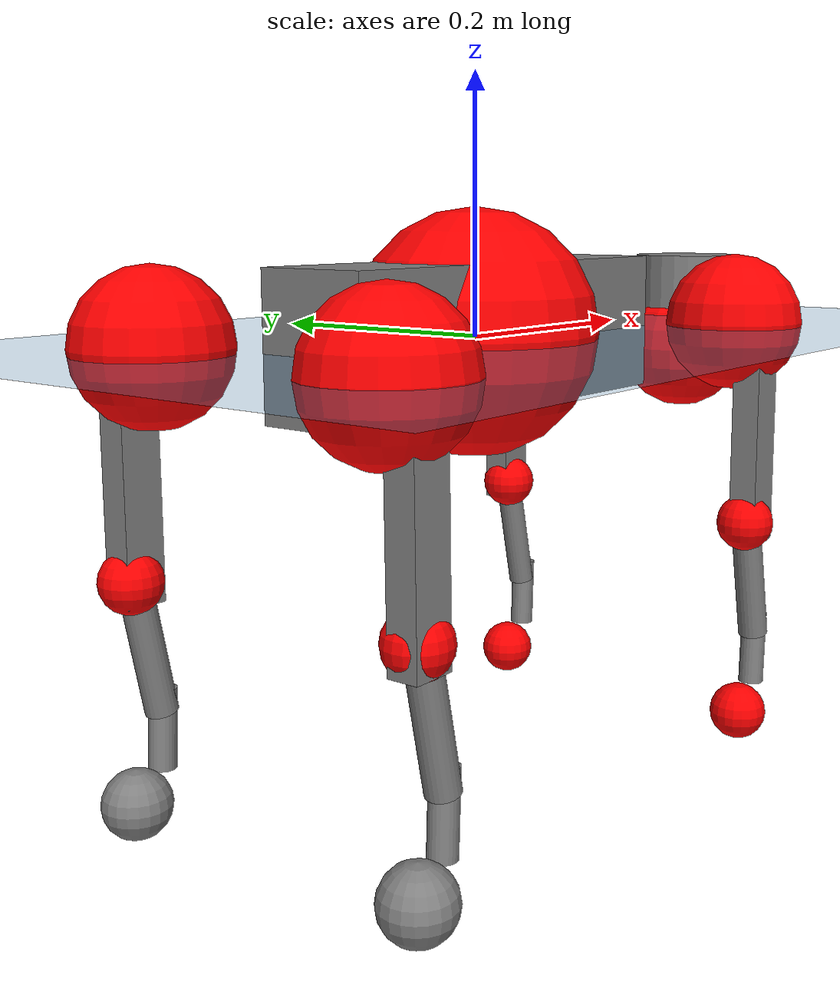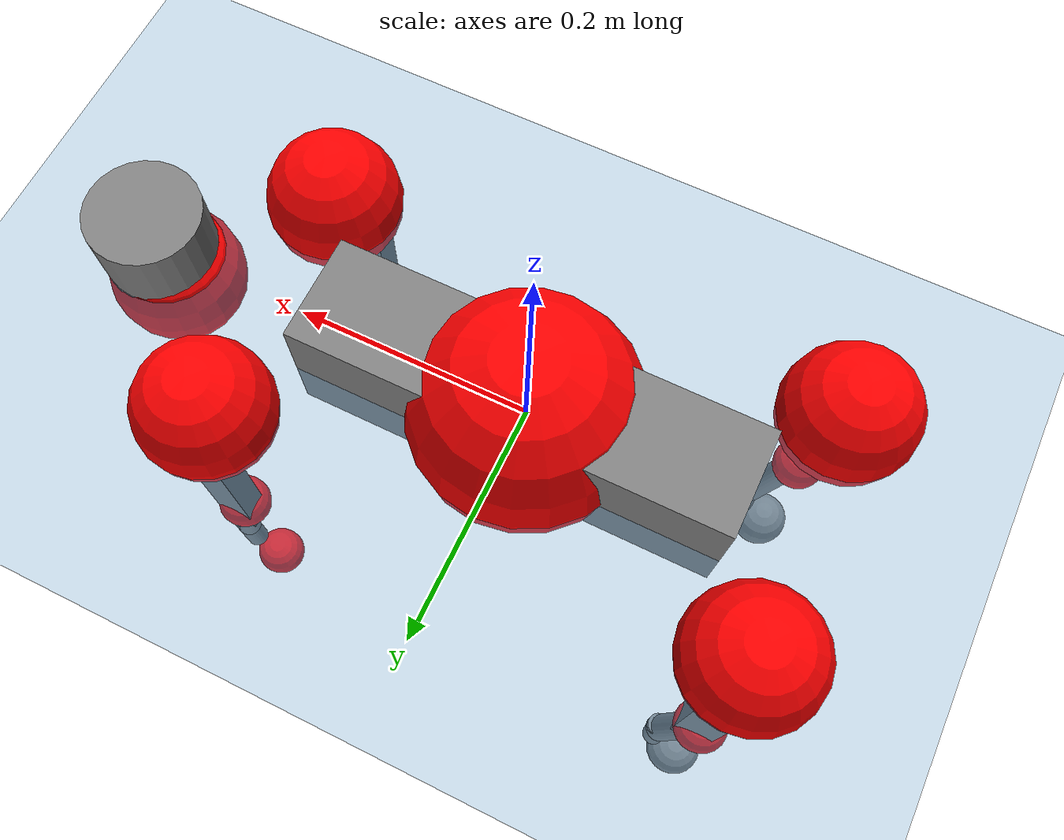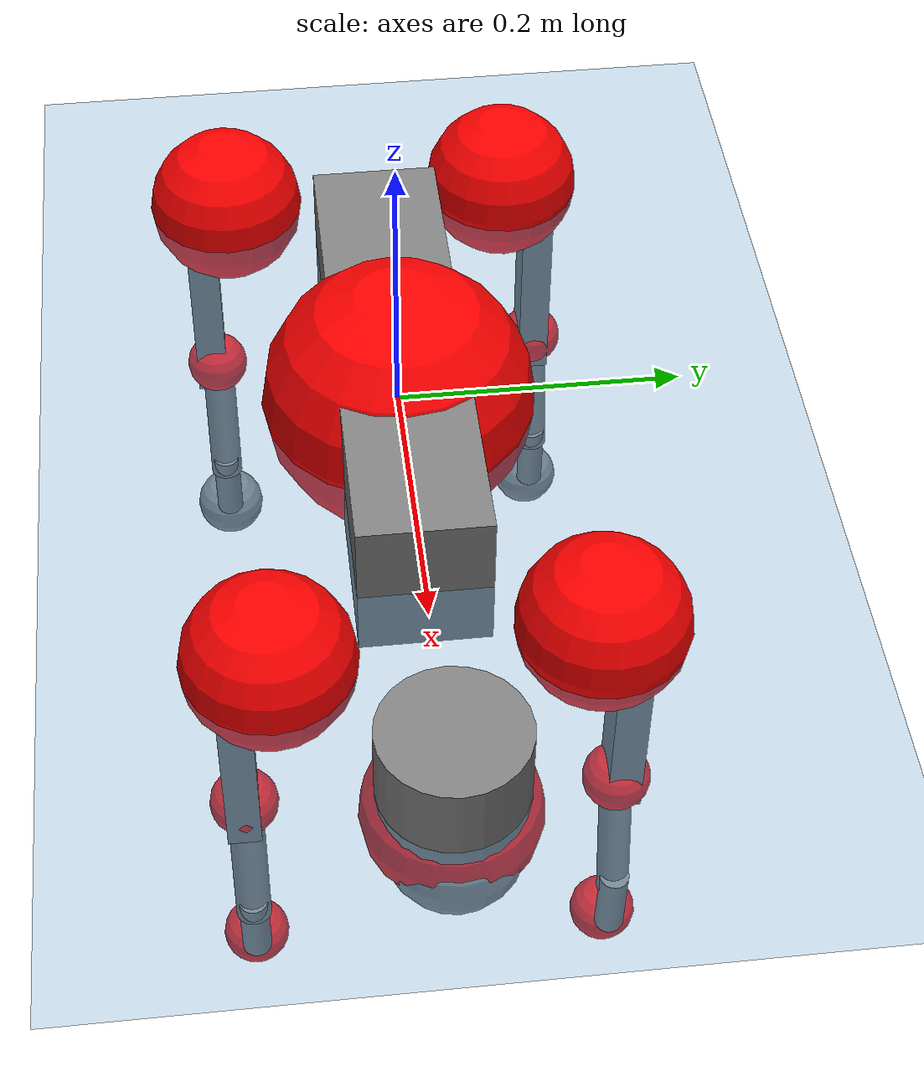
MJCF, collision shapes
<mujoco model="go2">
  <compiler angle="radian" assetdir="assets" balanceinertia="true" inertiafromgeom="false"/>

  <option timestep="0.005" density="1.2" viscosity="2e-05"/>

  <size nkey="1"/>

  <visual>
    <quality shadowsize="8192"/>
    <map shadowclip="0.5"/>
  </visual>

  <default>
    <default class="/">
      <geom contype="0" conaffinity="0" group="1" solref="-1000 -80"/>
      <site size="0.01 0.005 0.005" group="5"/>
      <general forcelimited="true" biastype="affine" gainprm="20" biasprm="0 -20 -0.5"/>
      <default class="go2">
        <joint armature="0.01" damping="0.01" frictionloss="0.2"/>
        <geom condim="1" margin="0.001"/>
        <default class="visual">
          <geom type="mesh" group="2"/>
        </default>
        <default class="collision">
          <geom group="3"/>
          <default class="foot">
            <geom size="0.022 0 0" condim="6" priority="1" friction="0.8 0.02 0.01" solimp="0.015 1 0.022"/>
          </default>
        </default>
        <default class="reward_collision_sphere">
          <geom group="5" rgba="1 0 0 1"/>
        </default>
      </default>
    </default>
  </default>

  <asset>
    <texture type="skybox" colorspace="auto" name="//unnamed_texture_0" builtin="gradient" rgb1="0.95 0.95 0.95" rgb2="0.95 0.95 0.95" width="100" height="600"/>
    <texture type="2d" colorspace="auto" name="texplane" builtin="checker" rgb1="0.345 0.575 0.748" rgb2="0.345 0.575 0.748" markrgb="1 1 1" width="512" height="512"/>
    <material name="MatPlane" class="/" texture="texplane" texuniform="true" texrepeat="2 2" specular="0.9"/>
    <material name="metal" class="/" rgba="0.9 0.95 0.95 1"/>
    <material name="black" class="/" rgba="0 0 0 1"/>
    <material name="white" class="/"/>
    <material name="gray" class="/" rgba="0.671705 0.692426 0.77427 1"/>
    <mesh name="base_0" class="/" file="base_0.obj"/>
    <mesh name="base_1" class="/" file="base_1.obj"/>
    <mesh name="base_2" class="/" file="base_2.obj"/>
    <mesh name="base_3" class="/" file="base_3.obj"/>
    <mesh name="base_4" class="/" file="base_4.obj"/>
    <mesh name="hip_0" class="/" file="hip_0.obj"/>
    <mesh name="hip_1" class="/" file="hip_1.obj"/>
    <mesh name="thigh_0" class="/" file="thigh_0.obj"/>
    <mesh name="thigh_1" class="/" file="thigh_1.obj"/>
    <mesh name="thigh_mirror_0" class="/" file="thigh_mirror_0.obj"/>
    <mesh name="thigh_mirror_1" class="/" file="thigh_mirror_1.obj"/>
    <mesh name="calf_0" class="/" file="calf_0.obj"/>
    <mesh name="calf_1" class="/" file="calf_1.obj"/>
    <mesh name="calf_mirror_0" class="/" file="calf_mirror_0.obj"/>
    <mesh name="calf_mirror_1" class="/" file="calf_mirror_1.obj"/>
    <mesh name="foot" class="/" file="foot.obj"/>
  </asset>

  <worldbody>
    <geom name="floor" class="/" size="100 100 0.125" type="plane" group="0" material="MatPlane"/>
    <light name="toplight_shadow" class="/" pos="0 0 5" dir="0.0990148 0.0990148 -0.990148" type="directional" ambient="0.04 0.04 0.04" diffuse="0.55 0.55 0.55" specular="0.12 0.12 0.12"/>
    <light name="toplight_fill" class="/" pos="0 0 5" dir="0.0990148 0.0990148 -0.990148" type="directional" castshadow="false" ambient="0.04 0.04 0.04" diffuse="0.3 0.3 0.3" specular="0.08 0.08 0.08"/>
    <body name="trunk" childclass="go2" pos="-0.000321111 0.000314206 0.00354374" quat="1 1.08015e-05 0.000564704 -0.000490549">
      <inertial pos="0.0268695 -0.0072356 -0.00877075" quat="0.000831455 0.713746 -0.00266858 0.700399" mass="6.35614" diaginertia="0.224402 0.0650678 0.00769559"/>
      <joint name="//unnamed_joint_0" type="free" armature="0" damping="0" frictionloss="0"/>
      <geom name="//unnamed_geom_1" class="visual" material="black" mesh="base_0"/>
      <geom name="//unnamed_geom_2" class="visual" material="black" mesh="base_1"/>
      <geom name="//unnamed_geom_3" class="visual" material="black" mesh="base_2"/>
      <geom name="//unnamed_geom_4" class="visual" material="white" mesh="base_3"/>
      <geom name="//unnamed_geom_5" class="visual" material="gray" mesh="base_4"/>
      <geom name="trunk_1" class="collision" size="0.180789 0.044933 0.0547846" type="box"/>
      <geom name="trunk_2" class="collision" size="0.0480567 0.043251" pos="0.334683 0 0.00794922" type="cylinder"/>
      <geom name="trunk_3" class="collision" size="0.0451733" pos="0.344077 0 -0.0476953"/>
      <geom name="//unnamed_geom_9" class="reward_collision_sphere" size="0.0961134"/>
      <geom name="//unnamed_geom_10" class="reward_collision_sphere" size="0.057668" pos="0.328811 0 -0.0357715"/>
      <site name="imu" pos="-0.0278983 0.00847793 0.034321" size="0.00961134"/>
      <camera name="track" pos="0 -1.82831 0" quat="0.707107 0.707107 0 0" mode="trackcom"/>
      <camera name="ego_camera" pos="0.36639 0 0.0357715" quat="-0.5 -0.5 0.5 0.5"/>
      <body name="FL_hip" pos="0.224041 0.0451684 0.00473751" quat="1 -0.000425846 -0.000295015 0.000283697">
        <inertial pos="-0.000684557 0.000256272 0.00128621" quat="0.50406 0.491856 0.504131 0.499852" mass="0.585476" diaginertia="0.00195587 0.000382961 0.000146885"/>
        <joint name="FL_hip_joint" pos="0 0 0" axis="0.999999 0.000750523 0.000912691" stiffness="0.00405612" range="-1.03851 1.03669" armature="0.00835863" damping="0" frictionloss="0.241882"/>
        <geom name="//unnamed_geom_11" class="visual" material="metal" mesh="hip_0"/>
        <geom name="//unnamed_geom_12" class="visual" material="gray" mesh="hip_1"/>
        <geom name="//unnamed_geom_13" class="collision" size="0.0442122 0.0192227" pos="0 0.0731324 0" quat="0.707107 0.707107 0 0" type="cylinder"/>
        <geom name="//unnamed_geom_14" class="reward_collision_sphere" size="0.057668" pos="0 0.0639908 0"/>
        <body name="FL_thigh" pos="-0.00260179 0.0869915 -8.36539e-05" quat="1 -3.65966e-05 7.05081e-05 0.000255498">
          <inertial pos="-0.00590775 -0.020439 -0.0243935" quat="0.826989 0.092441 -0.0211591 0.554163" mass="1.11888" diaginertia="0.0130576 0.00378789 0.000329607"/>
          <joint name="FL_thigh_joint" pos="0 0 0" axis="0.00394582 0.999992 -0.000715306" range="-1.515 3.48177" armature="0.0100129" damping="0.0161255" frictionloss="0.212714"/>
          <geom name="//unnamed_geom_15" class="visual" material="metal" mesh="thigh_0"/>
          <geom name="//unnamed_geom_16" class="visual" material="gray" mesh="thigh_1"/>
          <geom name="//unnamed_geom_17" class="collision" size="0.102361 0.0117739 0.0163393" pos="0 0 -0.0846592" quat="0.707107 0 0.707107 0" type="box"/>
          <body name="FL_calf" pos="0.000176453 -0.00334528 -0.173387" quat="0.999994 0.000314275 -0.00319663 -0.00101888">
            <inertial pos="0.00544202 -0.000443131 -0.111831" quat="0.709747 0.00266049 -0.00413646 0.704439" mass="0.224239" diaginertia="0.00330844 0.000970336 1.81502e-05"/>
            <joint name="FL_calf_joint" pos="0 0 0" axis="-0.0018698 0.999998 -0.000327679" stiffness="0.00877835" range="-2.68364 -0.87446" armature="0.00998655" damping="0" frictionloss="0.226575"/>
            <geom name="//unnamed_geom_18" class="visual" material="gray" mesh="calf_0"/>
            <geom name="//unnamed_geom_19" class="visual" material="black" mesh="calf_1"/>
            <geom name="FL_calf0" class="collision" size="0.0115336 0.057668" pos="0.00939461 0 -0.0476953" quat="0.994493 0 -0.104807 0" type="cylinder"/>
            <geom name="//unnamed_geom_21" class="collision" size="0.0105725 0.0312369" pos="0.0234865 0 -0.117648" quat="0.999688 0 0.0249974 0" type="cylinder"/>
            <geom name="//unnamed_geom_22" class="visual" pos="0 0 -0.169318" quat="1 0 0 0" material="black" mesh="foot"/>
            <geom name="FL_foot" class="foot" size="0.0160986" pos="-0.00234865 0 -0.169318"/>
            <geom name="//unnamed_geom_24" class="reward_collision_sphere" size="0.0240284"/>
            <geom name="//unnamed_geom_25" class="reward_collision_sphere" size="0.0240284" pos="-0.00234865 0 -0.169318"/>
            <site name="FL_foot" class="foot" pos="-0.00234865 0 -0.169318" size="0.00961134"/>
          </body>
        </body>
      </body>
      <body name="FR_hip" pos="0.227958 -0.0407455 -0.00143348" quat="0.999997 -0.00204089 0.00059481 0.00110048">
        <inertial pos="-0.00535236 -4.53949e-05 -0.00239889" quat="0.497635 0.505992 0.499094 0.497229" mass="0.655242" diaginertia="0.00207255 0.000415568 0.000151198"/>
        <joint name="FR_hip_joint" pos="0 0 0" axis="0.999918 0.0108917 -0.0066643" range="-1.13579 1.18011" armature="0.00905518" damping="0.0129215" frictionloss="0.218016"/>
        <geom name="//unnamed_geom_26" class="visual" pos="0 1.03871e-09 4.45523e-08" quat="4.63268e-05 1 0 0" material="metal" mesh="hip_0"/>
        <geom name="//unnamed_geom_27" class="visual" pos="0 1.68387e-09 -1.10195e-07" quat="4.63268e-05 1 0 0" material="gray" mesh="hip_1"/>
        <geom name="//unnamed_geom_28" class="collision" size="0.0442122 0.0192227" pos="0 -0.0731324 0" quat="0.707107 0.707107 0 0" type="cylinder"/>
        <geom name="//unnamed_geom_29" class="reward_collision_sphere" size="0.057668" pos="0 -0.0639908 0"/>
        <body name="FR_thigh" pos="-0.00792681 -0.0896254 -7.52423e-05" quat="1 2.67586e-05 8.8229e-05 -0.000440772">
          <inertial pos="-0.00191325 0.0182434 -0.0255356" quat="0.551623 -0.0200925 0.0848366 0.829525" mass="0.929871" diaginertia="0.0129016 0.00336218 0.000255685"/>
          <joint name="FR_thigh_joint" pos="0 0 0" axis="0.0214887 -0.999322 -0.0299056" stiffness="0.000118817" range="-3.66055 1.70391" armature="0.0101589" damping="0.0278553" frictionloss="0.177687"/>
          <geom name="//unnamed_geom_30" class="visual" material="metal" mesh="thigh_mirror_0"/>
          <geom name="//unnamed_geom_31" class="visual" material="gray" mesh="thigh_mirror_1"/>
          <geom name="//unnamed_geom_32" class="collision" size="0.102361 0.0117739 0.0163393" pos="0 0 -0.0846592" quat="0.707107 0 0.707107 0" type="box"/>
          <body name="FR_calf" pos="-0.00687976 0.00146155 -0.170777" quat="1 -0.000352999 4.29781e-05 0.000849741">
            <inertial pos="0.00743207 -0.000949375 -0.120238" quat="0.703661 -0.00938857 0.00182529 0.710471" mass="0.237633" diaginertia="0.00323395 0.000917109 1.65654e-05"/>
            <joint name="FR_calf_joint" pos="0 0 0" axis="0.0205661 -0.99899 -0.0399473" range="0.858612 2.82487" armature="0.00938213" damping="0.0157232" frictionloss="0.274024"/>
            <geom name="//unnamed_geom_33" class="visual" material="gray" mesh="calf_mirror_0"/>
            <geom name="//unnamed_geom_34" class="visual" material="black" mesh="calf_mirror_1"/>
            <geom name="FR_calf0" class="collision" size="0.0124947 0.057668" pos="0.0117433 0 -0.0476953" quat="0.995004 0 -0.0998334 0" type="cylinder"/>
            <geom name="//unnamed_geom_36" class="collision" size="0.0105725 0.0312369" pos="0.0234865 0 -0.117648" quat="0.999688 0 0.0249974 0" type="cylinder"/>
            <geom name="//unnamed_geom_37" class="visual" pos="0 0 -0.169318" quat="1 0 0 0" material="black" mesh="foot"/>
            <geom name="FR_foot" class="foot" size="0.0221841" pos="-0.00234865 0 -0.169318"/>
            <geom name="//unnamed_geom_39" class="reward_collision_sphere" size="0.0240284"/>
            <geom name="//unnamed_geom_40" class="reward_collision_sphere" size="0.0240284" pos="-0.00234865 0 -0.169318"/>
            <site name="FR_foot" class="foot" pos="-0.00234865 0 -0.169318" size="0.00961134"/>
          </body>
        </body>
      </body>
      <body name="RL_hip" pos="-0.229011 0.0384858 -0.000140829" quat="0.999999 0.0010752 -0.000585505 -0.000916541">
        <inertial pos="0.00745072 0.00716286 0.00208256" quat="0.503183 0.53541 0.477554 0.481752" mass="0.670099" diaginertia="0.00199218 0.000367955 0.000153919"/>
        <joint name="RL_hip_joint" pos="0 0 0" axis="-0.999858 -0.0093624 -0.0140082" stiffness="0.0218829" range="-1.01608 1.06973" armature="0.00928121" damping="0.0200964" frictionloss="0.17938"/>
        <geom name="//unnamed_geom_41" class="visual" pos="-3.30521e-09 0 -6.47898e-07" quat="4.63268e-05 0 1 0" material="metal" mesh="hip_0"/>
        <geom name="//unnamed_geom_42" class="visual" pos="-5.35815e-09 0 -5.74593e-07" quat="4.63268e-05 0 1 0" material="gray" mesh="hip_1"/>
        <geom name="//unnamed_geom_43" class="collision" size="0.0442122 0.0192227" pos="0 0.0731324 0" quat="0.707107 0.707107 0 0" type="cylinder"/>
        <geom name="//unnamed_geom_44" class="reward_collision_sphere" size="0.057668" pos="0 0.0639908 0"/>
        <body name="RL_thigh" pos="-0.000297806 0.0925345 -0.000132432" quat="1 0.000551236 0.000352217 0.000355069">
          <inertial pos="-0.00477172 -0.0169381 -0.0255832" quat="0.829543 0.0848195 -0.0200388 0.551599" mass="0.992181" diaginertia="0.0118661 0.00348733 0.000251819"/>
          <joint name="RL_thigh_joint" pos="0 0 0" axis="0.00406123 0.99996 -0.00798992" range="-0.512503 4.52502" armature="0.00985171" damping="0.00684994" frictionloss="0.186092"/>
          <geom name="//unnamed_geom_45" class="visual" material="metal" mesh="thigh_0"/>
          <geom name="//unnamed_geom_46" class="visual" material="gray" mesh="thigh_1"/>
          <geom name="//unnamed_geom_47" class="collision" size="0.102361 0.0117739 0.0163393" pos="0 0 -0.0846592" quat="0.707107 0 0.707107 0" type="box"/>
          <body name="RL_calf" pos="-0.00422991 0.000380613 -0.170154" quat="0.999997 0.0019763 0.000571559 -0.00139125">
            <inertial pos="0.0030266 -0.00103499 -0.109234" quat="0.710699 0.00149674 -0.00452251 0.70348" mass="0.204019" diaginertia="0.00292063 0.000761304 1.32562e-05"/>
            <joint name="RL_calf_joint" pos="0 0 0" axis="-0.00686465 0.999904 -0.0120693" stiffness="0.00512485" range="-2.70746 -0.654313" armature="0.0100066" damping="0" frictionloss="0.18239"/>
            <geom name="//unnamed_geom_48" class="visual" material="gray" mesh="calf_0"/>
            <geom name="//unnamed_geom_49" class="visual" material="black" mesh="calf_1"/>
            <geom name="RL_calf0" class="collision" size="0.0124947 0.057668" pos="0.0117433 0 -0.0476953" quat="0.995004 0 -0.0998334 0" type="cylinder"/>
            <geom name="//unnamed_geom_51" class="collision" size="0.0105725 0.0312369" pos="0.0234865 0 -0.117648" quat="0.999688 0 0.0249974 0" type="cylinder"/>
            <geom name="//unnamed_geom_52" class="visual" pos="0 0 -0.169318" quat="1 0 0 0" material="black" mesh="foot"/>
            <geom name="RL_foot" class="foot" size="0.0265527" pos="-0.00234865 0 -0.169318"/>
            <geom name="//unnamed_geom_54" class="reward_collision_sphere" size="0.0240284"/>
            <geom name="//unnamed_geom_55" class="reward_collision_sphere" size="0.0240284" pos="-0.00234865 0 -0.169318"/>
            <site name="RL_foot" class="foot" pos="-0.00234865 0 -0.169318" size="0.00961134"/>
          </body>
        </body>
      </body>
      <body name="RR_hip" pos="-0.227021 -0.0465791 -0.00430354" quat="0.999996 -0.00174702 -0.00203506 -0.000952973">
        <inertial pos="0.00796871 -0.00274482 0.000470128" quat="0.525156 0.468938 0.485644 0.518129" mass="0.614372" diaginertia="0.00198117 0.00039963 0.000159106"/>
        <joint name="RR_hip_joint" pos="0 0 0" axis="-0.999993 -0.00142156 0.00353973" range="-0.938404 1.07861" armature="0.0126973" damping="0.0230214" frictionloss="0.167976"/>
        <geom name="//unnamed_geom_56" class="visual" pos="3.29621e-09 1.03871e-09 -6.9245e-07" quat="2.14617e-09 4.63268e-05 4.63268e-05 -1" material="metal" mesh="hip_0"/>
        <geom name="//unnamed_geom_57" class="visual" pos="5.38042e-09 1.68387e-09 -4.64398e-07" quat="2.14617e-09 4.63268e-05 4.63268e-05 -1" material="gray" mesh="hip_1"/>
        <geom name="//unnamed_geom_58" class="collision" size="0.0442122 0.0192227" pos="0 -0.0731324 0" quat="0.707107 0.707107 0 0" type="cylinder"/>
        <geom name="//unnamed_geom_59" class="reward_collision_sphere" size="0.057668" pos="0 -0.0639908 0"/>
        <body name="RR_thigh" pos="-0.00156683 -0.0861916 0.00725027" quat="1 -0.000233711 -0.000643856 -0.000266577">
          <inertial pos="-0.00461824 0.0116678 -0.0278982" quat="0.536717 -0.0107833 0.0959518 0.838219" mass="1.14044" diaginertia="0.0143759 0.00407048 0.000300932"/>
          <joint name="RR_thigh_joint" pos="0 0 0" axis="0.00805086 -0.999923 -0.00948721" range="-4.54324 0.658786" armature="0.00511168" damping="0.000416483" frictionloss="0.199636"/>
          <geom name="//unnamed_geom_60" class="visual" material="metal" mesh="thigh_mirror_0"/>
          <geom name="//unnamed_geom_61" class="visual" material="gray" mesh="thigh_mirror_1"/>
          <geom name="//unnamed_geom_62" class="collision" size="0.102361 0.0117739 0.0163393" pos="0 0 -0.0846592" quat="0.707107 0 0.707107 0" type="box"/>
          <body name="RR_calf" pos="0.0041749 0.00462264 -0.169368" quat="0.999998 0.00141391 0.000857551 -0.000976618">
            <inertial pos="0.00623114 -0.000720313 -0.113183" quat="0.724149 0.0155758 -0.00947512 0.689403" mass="0.234817" diaginertia="0.00345623 0.000938565 1.52478e-05"/>
            <joint name="RR_calf_joint" pos="0 0 0" axis="-0.0125359 -0.999508 -0.0287433" range="0.744358 2.60224" armature="0.00883415" damping="0.000490217" frictionloss="0.212051"/>
            <geom name="//unnamed_geom_63" class="visual" material="gray" mesh="calf_mirror_0"/>
            <geom name="//unnamed_geom_64" class="visual" material="black" mesh="calf_mirror_1"/>
            <geom name="RR_calf0" class="collision" size="0.0124947 0.057668" pos="0.0117433 0 -0.0476953" quat="0.995004 0 -0.0998334 0" type="cylinder"/>
            <geom name="//unnamed_geom_66" class="collision" size="0.0105725 0.0312369" pos="0.0234865 0 -0.117648" quat="0.999688 0 0.0249974 0" type="cylinder"/>
            <geom name="//unnamed_geom_67" class="visual" pos="0 0 -0.169318" quat="1 0 0 0" material="black" mesh="foot"/>
            <geom name="RR_foot" class="foot" size="0.027795" pos="-0.00234865 0 -0.169318"/>
            <geom name="//unnamed_geom_69" class="reward_collision_sphere" size="0.0240284"/>
            <geom name="//unnamed_geom_70" class="reward_collision_sphere" size="0.0240284" pos="-0.00234865 0 -0.169318"/>
            <site name="RR_foot" class="foot" pos="-0.00234865 0 -0.169318" size="0.00961134"/>
          </body>
        </body>
      </body>
    </body>
  </worldbody>

  <contact>
    <pair class="/" geom1="floor" geom2="FL_foot" name="//unnamed_contact_0"/>
    <pair class="/" geom1="floor" geom2="FR_foot" name="//unnamed_contact_1"/>
    <pair class="/" geom1="floor" geom2="RL_foot" name="//unnamed_contact_2"/>
    <pair class="/" geom1="floor" geom2="RR_foot" name="//unnamed_contact_3"/>
  </contact>

  <actuator>
    <general name="FL_hip" class="/" joint="FL_hip_joint" forcerange="-24.3481 24.3481" gainprm="15.9057" biasprm="0 -15.9057 -0.476758"/>
    <general name="FL_thigh" class="/" joint="FL_thigh_joint" forcerange="-29.9644 29.9644" gainprm="15.9057" biasprm="0 -15.9057 -0.476758"/>
    <general name="FL_calf" class="/" joint="FL_calf_joint" forcerange="-45.6672 45.6672" gainprm="15.9057" biasprm="0 -15.9057 -0.476758"/>
    <general name="FR_hip" class="/" joint="FR_hip_joint" forcerange="-22.0561 22.0561" gainprm="15.9057" biasprm="0 -15.9057 -0.476758"/>
    <general name="FR_thigh" class="/" joint="FR_thigh_joint" forcerange="-23.0697 23.0697" gainprm="15.9057" biasprm="0 -15.9057 -0.476758"/>
    <general name="FR_calf" class="/" joint="FR_calf_joint" forcerange="-44.7566 44.7566" gainprm="15.9057" biasprm="0 -15.9057 -0.476758"/>
    <general name="RL_hip" class="/" joint="RL_hip_joint" forcerange="-20.239 20.239" gainprm="15.9057" biasprm="0 -15.9057 -0.476758"/>
    <general name="RL_thigh" class="/" joint="RL_thigh_joint" forcerange="-22.8903 22.8903" gainprm="15.9057" biasprm="0 -15.9057 -0.476758"/>
    <general name="RL_calf" class="/" joint="RL_calf_joint" forcerange="-45.9722 45.9722" gainprm="15.9057" biasprm="0 -15.9057 -0.476758"/>
    <general name="RR_hip" class="/" joint="RR_hip_joint" forcerange="-29.7574 29.7574" gainprm="15.9057" biasprm="0 -15.9057 -0.476758"/>
    <general name="RR_thigh" class="/" joint="RR_thigh_joint" forcerange="-21.1894 21.1894" gainprm="15.9057" biasprm="0 -15.9057 -0.476758"/>
    <general name="RR_calf" class="/" joint="RR_calf_joint" forcerange="-41.309 41.309" gainprm="15.9057" biasprm="0 -15.9057 -0.476758"/>
  </actuator>

  <sensor>
    <gyro site="imu" name="imu_angular_velocity"/>
    <velocimeter site="imu" name="imu_linear_velocity"/>
    <framelinvel objtype="site" objname="FL_foot" name="FL_foot_global_linear_velocity"/>
    <framelinvel objtype="site" objname="FR_foot" name="FR_foot_global_linear_velocity"/>
    <framelinvel objtype="site" objname="RL_foot" name="RL_foot_global_linear_velocity"/>
    <framelinvel objtype="site" objname="RR_foot" name="RR_foot_global_linear_velocity"/>
  </sensor>

  <keyframe>
    <key name="home" qpos="0 0 0.325 1 0 0 0 0.1 0.8 -1.5 -0.1 -0.8 1.5 -0.1 0.8 -1.5 0.1 -0.8 1.5"/>
  </keyframe>
</mujoco>
